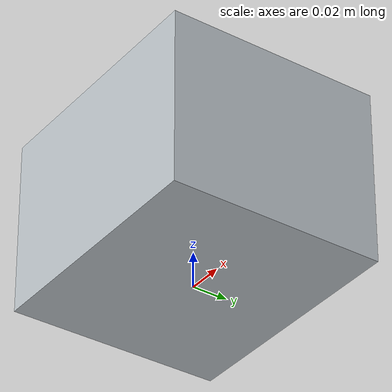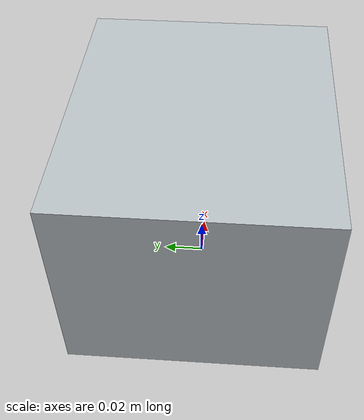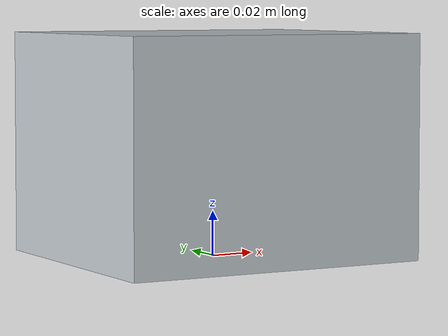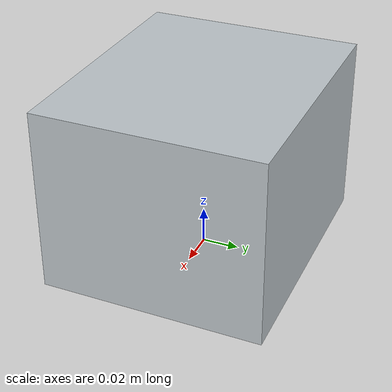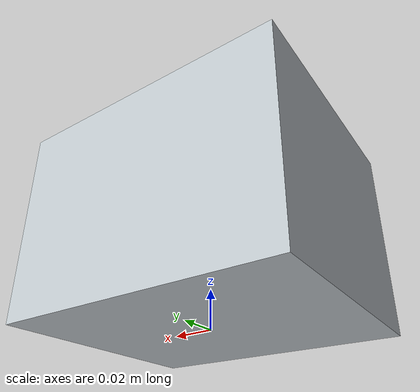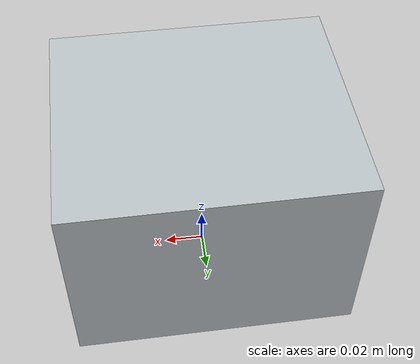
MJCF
<?xml version="1.0" encoding="utf-8"?>
<mujoco model="peristaltic_pump_dial">
  <compiler angle="radian" autolimits="true"/>
  <default>
    <default class="body"><geom contype="1" conaffinity="1"/></default>
  </default>
  <worldbody>
    <body name="base">
      <geom type="box" size="0.07 0.06 0.05" pos="0 0 0.05" rgba="0.75 0.78 0.8 1" class="body"/>

    </body>
  </worldbody>
</mujoco>
